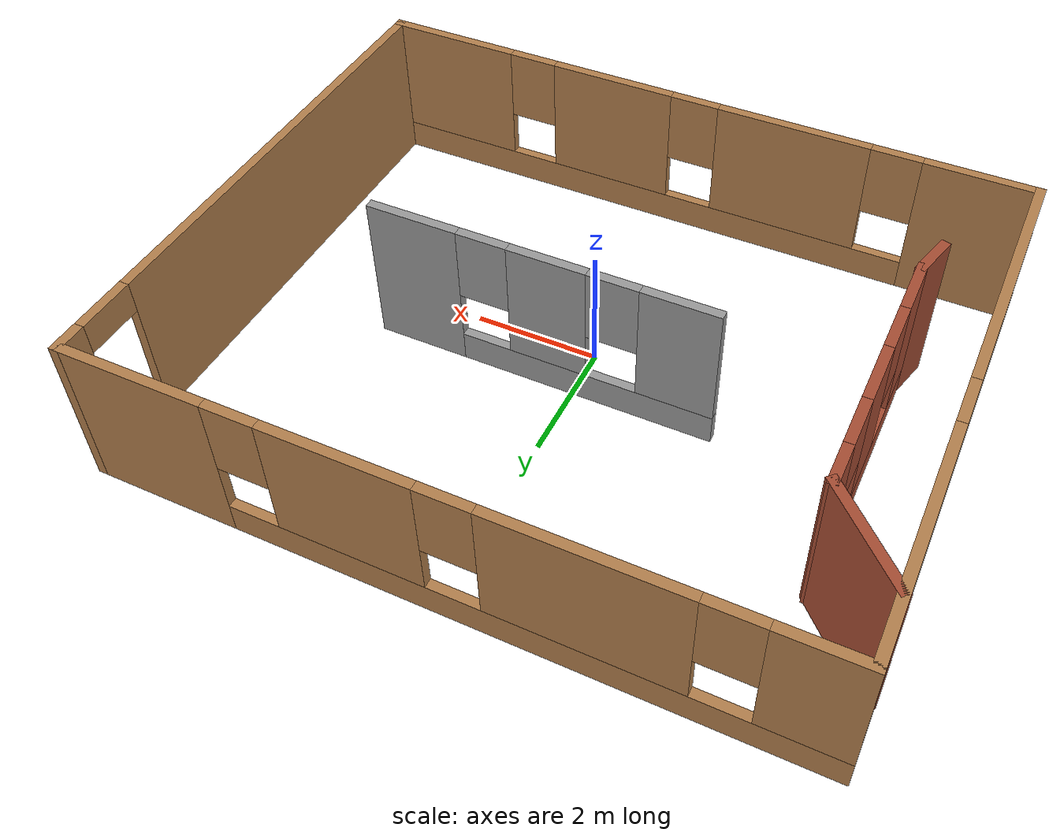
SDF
<?xml version='1.0'?>
<sdf version='1.7'>
  <model name='hotel'>
    <pose>-0.064485 0.655701 0 0 -0 0</pose>
    <link name='Wall_0'>
      <pose>0.006895 -4.3 0 0 -0 0</pose>
      <visual name='Wall_0_Visual_0'>
        <pose>-4.5979 0 1.25 0 -0 0</pose>
        <geometry>
          <box>
            <size>1.8042 0.15 2.5</size>
          </box>
        </geometry>
        <material>
          <script>
            <uri>file://media/materials/scripts/gazebo.material</uri>
            <name>Gazebo/Wood</name>
          </script>
          <ambient>1 1 1 1</ambient>
        </material>
        <meta>
          <layer>0</layer>
        </meta>
      </visual>
      <collision name='Wall_0_Collision_0'>
        <geometry>
          <box>
            <size>1.8042 0.15 2.5</size>
          </box>
        </geometry>
        <pose>-4.5979 0 1.25 0 -0 0</pose>
      </collision>
      <visual name='Wall_0_Visual_1'>
        <pose>0.9021 0 0.25 0 -0 0</pose>
        <geometry>
          <box>
            <size>9.1958 0.15 0.5</size>
          </box>
        </geometry>
        <material>
          <script>
            <uri>file://media/materials/scripts/gazebo.material</uri>
            <name>Gazebo/Wood</name>
          </script>
          <ambient>1 1 1 1</ambient>
        </material>
        <meta>
          <layer>0</layer>
        </meta>
      </visual>
      <collision name='Wall_0_Collision_1'>
        <geometry>
          <box>
            <size>9.1958 0.15 0.5</size>
          </box>
        </geometry>
        <pose>0.9021 0 0.25 0 -0 0</pose>
      </collision>
      <visual name='Wall_0_Visual_2'>
        <pose>-1.65654 0 1.5 0 -0 0</pose>
        <geometry>
          <box>
            <size>2.47851 0.15 2</size>
          </box>
        </geometry>
        <material>
          <script>
            <uri>file://media/materials/scripts/gazebo.material</uri>
            <name>Gazebo/Wood</name>
          </script>
          <ambient>1 1 1 1</ambient>
        </material>
        <meta>
          <layer>0</layer>
        </meta>
      </visual>
      <collision name='Wall_0_Collision_2'>
        <geometry>
          <box>
            <size>2.47851 0.15 2</size>
          </box>
        </geometry>
        <pose>-1.65654 0 1.5 0 -0 0</pose>
      </collision>
      <visual name='Wall_0_Visual_3'>
        <pose>1.42083 0 1.5 0 -0 0</pose>
        <geometry>
          <box>
            <size>2.07624 0.15 2</size>
          </box>
        </geometry>
        <material>
          <script>
            <uri>file://media/materials/scripts/gazebo.material</uri>
            <name>Gazebo/Wood</name>
          </script>
          <ambient>1 1 1 1</ambient>
        </material>
        <meta>
          <layer>0</layer>
        </meta>
      </visual>
      <collision name='Wall_0_Collision_3'>
        <geometry>
          <box>
            <size>2.07624 0.15 2</size>
          </box>
        </geometry>
        <pose>1.42083 0 1.5 0 -0 0</pose>
      </collision>
      <visual name='Wall_0_Visual_4'>
        <pose>4.37948 0 1.5 0 -0 0</pose>
        <geometry>
          <box>
            <size>2.24105 0.15 2</size>
          </box>
        </geometry>
        <material>
          <script>
            <uri>file://media/materials/scripts/gazebo.material</uri>
            <name>Gazebo/Wood</name>
          </script>
          <ambient>1 1 1 1</ambient>
        </material>
        <meta>
          <layer>0</layer>
        </meta>
      </visual>
      <collision name='Wall_0_Collision_4'>
        <geometry>
          <box>
            <size>2.24105 0.15 2</size>
          </box>
        </geometry>
        <pose>4.37948 0 1.5 0 -0 0</pose>
      </collision>
      <visual name='Wall_0_Visual_5'>
        <pose>-3.2958 0 1.9 0 -0 0</pose>
        <geometry>
          <box>
            <size>0.8 0.15 1.2</size>
          </box>
        </geometry>
        <material>
          <script>
            <uri>file://media/materials/scripts/gazebo.material</uri>
            <name>Gazebo/Wood</name>
          </script>
          <ambient>1 1 1 1</ambient>
        </material>
        <meta>
          <layer>0</layer>
        </meta>
      </visual>
      <collision name='Wall_0_Collision_5'>
        <geometry>
          <box>
            <size>0.8 0.15 1.2</size>
          </box>
        </geometry>
        <pose>-3.2958 0 1.9 0 -0 0</pose>
      </collision>
      <visual name='Wall_0_Visual_6'>
        <pose>-0.017288 0 1.9 0 -0 0</pose>
        <geometry>
          <box>
            <size>0.8 0.15 1.2</size>
          </box>
        </geometry>
        <material>
          <script>
            <uri>file://media/materials/scripts/gazebo.material</uri>
            <name>Gazebo/Wood</name>
          </script>
          <ambient>1 1 1 1</ambient>
        </material>
        <meta>
          <layer>0</layer>
        </meta>
      </visual>
      <collision name='Wall_0_Collision_6'>
        <geometry>
          <box>
            <size>0.8 0.15 1.2</size>
          </box>
        </geometry>
        <pose>-0.017288 0 1.9 0 -0 0</pose>
      </collision>
      <visual name='Wall_0_Visual_7'>
        <pose>2.85895 0 1.9 0 -0 0</pose>
        <geometry>
          <box>
            <size>0.8 0.15 1.2</size>
          </box>
        </geometry>
        <material>
          <script>
            <uri>file://media/materials/scripts/gazebo.material</uri>
            <name>Gazebo/Wood</name>
          </script>
          <ambient>1 1 1 1</ambient>
        </material>
        <meta>
          <layer>0</layer>
        </meta>
      </visual>
      <collision name='Wall_0_Collision_7'>
        <geometry>
          <box>
            <size>0.8 0.15 1.2</size>
          </box>
        </geometry>
        <pose>2.85895 0 1.9 0 -0 0</pose>
      </collision>
    </link>
    <link name='Wall_1'>
      <pose>5.43189 0 0 0 -0 1.5708</pose>
      <visual name='Wall_1_Visual_0'>
        <pose>-0.700694 0 1.25 0 -0 0</pose>
        <geometry>
          <box>
            <size>7.34861 0.15 2.5</size>
          </box>
        </geometry>
        <material>
          <script>
            <uri>file://media/materials/scripts/gazebo.material</uri>
            <name>Gazebo/Wood</name>
          </script>
          <ambient>1 1 1 1</ambient>
        </material>
        <meta>
          <layer>0</layer>
        </meta>
      </visual>
      <collision name='Wall_1_Collision_0'>
        <geometry>
          <box>
            <size>7.34861 0.15 2.5</size>
          </box>
        </geometry>
        <pose>-0.700694 0 1.25 0 -0 0</pose>
      </collision>
      <visual name='Wall_1_Visual_1'>
        <pose>4.12431 0 1.25 0 -0 0</pose>
        <geometry>
          <box>
            <size>0.501388 0.15 2.5</size>
          </box>
        </geometry>
        <material>
          <script>
            <uri>file://media/materials/scripts/gazebo.material</uri>
            <name>Gazebo/Wood</name>
          </script>
          <ambient>1 1 1 1</ambient>
        </material>
        <meta>
          <layer>0</layer>
        </meta>
      </visual>
      <collision name='Wall_1_Collision_1'>
        <geometry>
          <box>
            <size>0.501388 0.15 2.5</size>
          </box>
        </geometry>
        <pose>4.12431 0 1.25 0 -0 0</pose>
      </collision>
      <visual name='Wall_1_Visual_2'>
        <pose>3.42361 0 2.25 0 -0 0</pose>
        <geometry>
          <box>
            <size>0.9 0.15 0.5</size>
          </box>
        </geometry>
        <material>
          <script>
            <uri>file://media/materials/scripts/gazebo.material</uri>
            <name>Gazebo/Wood</name>
          </script>
          <ambient>1 1 1 1</ambient>
        </material>
        <meta>
          <layer>0</layer>
        </meta>
      </visual>
      <collision name='Wall_1_Collision_2'>
        <geometry>
          <box>
            <size>0.9 0.15 0.5</size>
          </box>
        </geometry>
        <pose>3.42361 0 2.25 0 -0 0</pose>
      </collision>
    </link>
    <link name='Wall_2'>
      <pose>0.006895 4.3 0 0 -0 3.14159</pose>
      <visual name='Wall_2_Visual_0'>
        <pose>-4.31914 0 1.25 0 -0 0</pose>
        <geometry>
          <box>
            <size>2.36173 0.15 2.5</size>
          </box>
        </geometry>
        <material>
          <script>
            <uri>file://media/materials/scripts/gazebo.material</uri>
            <name>Gazebo/Wood</name>
          </script>
          <ambient>1 1 1 1</ambient>
        </material>
        <meta>
          <layer>0</layer>
        </meta>
      </visual>
      <collision name='Wall_2_Collision_0'>
        <geometry>
          <box>
            <size>2.36173 0.15 2.5</size>
          </box>
        </geometry>
        <pose>-4.31914 0 1.25 0 -0 0</pose>
      </collision>
      <visual name='Wall_2_Visual_1'>
        <pose>1.18087 0 0.25 0 -0 0</pose>
        <geometry>
          <box>
            <size>8.63827 0.15 0.5</size>
          </box>
        </geometry>
        <material>
          <script>
            <uri>file://media/materials/scripts/gazebo.material</uri>
            <name>Gazebo/Wood</name>
          </script>
          <ambient>1 1 1 1</ambient>
        </material>
        <meta>
          <layer>0</layer>
        </meta>
      </visual>
      <collision name='Wall_2_Collision_1'>
        <geometry>
          <box>
            <size>8.63827 0.15 0.5</size>
          </box>
        </geometry>
        <pose>1.18087 0 0.25 0 -0 0</pose>
      </collision>
      <visual name='Wall_2_Visual_2'>
        <pose>-1.22975 0 1.5 0 -0 0</pose>
        <geometry>
          <box>
            <size>2.21704 0.15 2</size>
          </box>
        </geometry>
        <material>
          <script>
            <uri>file://media/materials/scripts/gazebo.material</uri>
            <name>Gazebo/Wood</name>
          </script>
          <ambient>1 1 1 1</ambient>
        </material>
        <meta>
          <layer>0</layer>
        </meta>
      </visual>
      <collision name='Wall_2_Collision_2'>
        <geometry>
          <box>
            <size>2.21704 0.15 2</size>
          </box>
        </geometry>
        <pose>-1.22975 0 1.5 0 -0 0</pose>
      </collision>
      <visual name='Wall_2_Visual_3'>
        <pose>2.06887 0 1.5 0 -0 0</pose>
        <geometry>
          <box>
            <size>2.78022 0.15 2</size>
          </box>
        </geometry>
        <material>
          <script>
            <uri>file://media/materials/scripts/gazebo.material</uri>
            <name>Gazebo/Wood</name>
          </script>
          <ambient>1 1 1 1</ambient>
        </material>
        <meta>
          <layer>0</layer>
        </meta>
      </visual>
      <collision name='Wall_2_Collision_3'>
        <geometry>
          <box>
            <size>2.78022 0.15 2</size>
          </box>
        </geometry>
        <pose>2.06887 0 1.5 0 -0 0</pose>
      </collision>
      <visual name='Wall_2_Visual_4'>
        <pose>4.87949 0 1.5 0 -0 0</pose>
        <geometry>
          <box>
            <size>1.24102 0.15 2</size>
          </box>
        </geometry>
        <material>
          <script>
            <uri>file://media/materials/scripts/gazebo.material</uri>
            <name>Gazebo/Wood</name>
          </script>
          <ambient>1 1 1 1</ambient>
        </material>
        <meta>
          <layer>0</layer>
        </meta>
      </visual>
      <collision name='Wall_2_Collision_4'>
        <geometry>
          <box>
            <size>1.24102 0.15 2</size>
          </box>
        </geometry>
        <pose>4.87949 0 1.5 0 -0 0</pose>
      </collision>
      <visual name='Wall_2_Visual_5'>
        <pose>-2.73827 0 1.9 0 -0 0</pose>
        <geometry>
          <box>
            <size>0.8 0.15 1.2</size>
          </box>
        </geometry>
        <material>
          <script>
            <uri>file://media/materials/scripts/gazebo.material</uri>
            <name>Gazebo/Wood</name>
          </script>
          <ambient>1 1 1 1</ambient>
        </material>
        <meta>
          <layer>0</layer>
        </meta>
      </visual>
      <collision name='Wall_2_Collision_5'>
        <geometry>
          <box>
            <size>0.8 0.15 1.2</size>
          </box>
        </geometry>
        <pose>-2.73827 0 1.9 0 -0 0</pose>
      </collision>
      <visual name='Wall_2_Visual_6'>
        <pose>0.278765 0 1.9 0 -0 0</pose>
        <geometry>
          <box>
            <size>0.8 0.15 1.2</size>
          </box>
        </geometry>
        <material>
          <script>
            <uri>file://media/materials/scripts/gazebo.material</uri>
            <name>Gazebo/Wood</name>
          </script>
          <ambient>1 1 1 1</ambient>
        </material>
        <meta>
          <layer>0</layer>
        </meta>
      </visual>
      <collision name='Wall_2_Collision_6'>
        <geometry>
          <box>
            <size>0.8 0.15 1.2</size>
          </box>
        </geometry>
        <pose>0.278765 0 1.9 0 -0 0</pose>
      </collision>
      <visual name='Wall_2_Visual_7'>
        <pose>3.85898 0 1.9 0 -0 0</pose>
        <geometry>
          <box>
            <size>0.8 0.15 1.2</size>
          </box>
        </geometry>
        <material>
          <script>
            <uri>file://media/materials/scripts/gazebo.material</uri>
            <name>Gazebo/Wood</name>
          </script>
          <ambient>1 1 1 1</ambient>
        </material>
        <meta>
          <layer>0</layer>
        </meta>
      </visual>
      <collision name='Wall_2_Collision_7'>
        <geometry>
          <box>
            <size>0.8 0.15 1.2</size>
          </box>
        </geometry>
        <pose>3.85898 0 1.9 0 -0 0</pose>
      </collision>
    </link>
    <link name='Wall_3'>
      <pose>-5.4181 0 0 0 -0 -1.5708</pose>
      <visual name='Wall_3_Visual_0'>
        <pose>-2.50028 0 1.25 0 -0 0</pose>
        <geometry>
          <box>
            <size>3.74945 0.15 2.5</size>
          </box>
        </geometry>
        <material>
          <script>
            <uri>file://media/materials/scripts/gazebo.material</uri>
            <name>Gazebo/Wood</name>
          </script>
          <ambient>1 1 1 1</ambient>
        </material>
        <meta>
          <layer>0</layer>
        </meta>
      </visual>
      <collision name='Wall_3_Collision_0'>
        <geometry>
          <box>
            <size>3.74945 0.15 2.5</size>
          </box>
        </geometry>
        <pose>-2.50028 0 1.25 0 -0 0</pose>
      </collision>
      <visual name='Wall_3_Visual_1'>
        <pose>1.87472 0 0.25 0 -0 0</pose>
        <geometry>
          <box>
            <size>5.00055 0.15 0.5</size>
          </box>
        </geometry>
        <material>
          <script>
            <uri>file://media/materials/scripts/gazebo.material</uri>
            <name>Gazebo/Wood</name>
          </script>
          <ambient>1 1 1 1</ambient>
        </material>
        <meta>
          <layer>0</layer>
        </meta>
      </visual>
      <collision name='Wall_3_Collision_1'>
        <geometry>
          <box>
            <size>5.00055 0.15 0.5</size>
          </box>
        </geometry>
        <pose>1.87472 0 0.25 0 -0 0</pose>
      </collision>
      <visual name='Wall_3_Visual_2'>
        <pose>2.27472 0 1.5 0 -0 0</pose>
        <geometry>
          <box>
            <size>4.20055 0.15 2</size>
          </box>
        </geometry>
        <material>
          <script>
            <uri>file://media/materials/scripts/gazebo.material</uri>
            <name>Gazebo/Wood</name>
          </script>
          <ambient>1 1 1 1</ambient>
        </material>
        <meta>
          <layer>0</layer>
        </meta>
      </visual>
      <collision name='Wall_3_Collision_2'>
        <geometry>
          <box>
            <size>4.20055 0.15 2</size>
          </box>
        </geometry>
        <pose>2.27472 0 1.5 0 -0 0</pose>
      </collision>
      <visual name='Wall_3_Visual_3'>
        <pose>-0.225554 0 1.9 0 -0 0</pose>
        <geometry>
          <box>
            <size>0.8 0.15 1.2</size>
          </box>
        </geometry>
        <material>
          <script>
            <uri>file://media/materials/scripts/gazebo.material</uri>
            <name>Gazebo/Wood</name>
          </script>
          <ambient>1 1 1 1</ambient>
        </material>
        <meta>
          <layer>0</layer>
        </meta>
      </visual>
      <collision name='Wall_3_Collision_3'>
        <geometry>
          <box>
            <size>0.8 0.15 1.2</size>
          </box>
        </geometry>
        <pose>-0.225554 0 1.9 0 -0 0</pose>
      </collision>
    </link>
    <link name='Wall_5'>
      <collision name='Wall_5_Collision'>
        <geometry>
          <box>
            <size>1.75 0.15 2.5</size>
          </box>
        </geometry>
        <pose>0 0 1.25 0 -0 0</pose>
      </collision>
      <visual name='Wall_5_Visual'>
        <pose>0 0 1.25 0 -0 0</pose>
        <geometry>
          <box>
            <size>1.75 0.15 2.5</size>
          </box>
        </geometry>
        <material>
          <script>
            <uri>file://media/materials/scripts/gazebo.material</uri>
            <name>Gazebo/Bricks</name>
          </script>
          <ambient>1 1 1 1</ambient>
        </material>
        <meta>
          <layer>0</layer>
        </meta>
      </visual>
      <pose>-4.83514 2.71713 0 0 -0 -0.785398</pose>
    </link>
    <link name='Wall_6'>
      <pose>-4.26946 0.101446 0 0 -0 -1.5708</pose>
      <visual name='Wall_6_Visual_0'>
        <pose>-1.77711 0 1.25 0 -0 0</pose>
        <geometry>
          <box>
            <size>0.695781 0.15 2.5</size>
          </box>
        </geometry>
        <material>
          <script>
            <uri>file://media/materials/scripts/gazebo.material</uri>
            <name>Gazebo/Bricks</name>
          </script>
          <ambient>1 1 1 1</ambient>
        </material>
        <meta>
          <layer>0</layer>
        </meta>
      </visual>
      <collision name='Wall_6_Collision_0'>
        <geometry>
          <box>
            <size>0.695781 0.15 2.5</size>
          </box>
        </geometry>
        <pose>-1.77711 0 1.25 0 -0 0</pose>
      </collision>
      <visual name='Wall_6_Visual_1'>
        <pose>0.347891 0 0.25 0 -0 0</pose>
        <geometry>
          <box>
            <size>3.55422 0.15 0.5</size>
          </box>
        </geometry>
        <material>
          <script>
            <uri>file://media/materials/scripts/gazebo.material</uri>
            <name>Gazebo/Bricks</name>
          </script>
          <ambient>1 1 1 1</ambient>
        </material>
        <meta>
          <layer>0</layer>
        </meta>
      </visual>
      <collision name='Wall_6_Collision_1'>
        <geometry>
          <box>
            <size>3.55422 0.15 0.5</size>
          </box>
        </geometry>
        <pose>0.347891 0 0.25 0 -0 0</pose>
      </collision>
      <visual name='Wall_6_Visual_2'>
        <pose>-0.134165 0 1.5 0 -0 0</pose>
        <geometry>
          <box>
            <size>0.990108 0.15 2</size>
          </box>
        </geometry>
        <material>
          <script>
            <uri>file://media/materials/scripts/gazebo.material</uri>
            <name>Gazebo/Bricks</name>
          </script>
          <ambient>1 1 1 1</ambient>
        </material>
        <meta>
          <layer>0</layer>
        </meta>
      </visual>
      <collision name='Wall_6_Collision_2'>
        <geometry>
          <box>
            <size>0.990108 0.15 2</size>
          </box>
        </geometry>
        <pose>-0.134165 0 1.5 0 -0 0</pose>
      </collision>
      <visual name='Wall_6_Visual_3'>
        <pose>1.64295 0 1.5 0 -0 0</pose>
        <geometry>
          <box>
            <size>0.964111 0.15 2</size>
          </box>
        </geometry>
        <material>
          <script>
            <uri>file://media/materials/scripts/gazebo.material</uri>
            <name>Gazebo/Bricks</name>
          </script>
          <ambient>1 1 1 1</ambient>
        </material>
        <meta>
          <layer>0</layer>
        </meta>
      </visual>
      <collision name='Wall_6_Collision_3'>
        <geometry>
          <box>
            <size>0.964111 0.15 2</size>
          </box>
        </geometry>
        <pose>1.64295 0 1.5 0 -0 0</pose>
      </collision>
      <visual name='Wall_6_Visual_4'>
        <pose>-1.02922 0 1.9 0 -0 0</pose>
        <geometry>
          <box>
            <size>0.8 0.15 1.2</size>
          </box>
        </geometry>
        <material>
          <script>
            <uri>file://media/materials/scripts/gazebo.material</uri>
            <name>Gazebo/Bricks</name>
          </script>
          <ambient>1 1 1 1</ambient>
        </material>
        <meta>
          <layer>0</layer>
        </meta>
      </visual>
      <collision name='Wall_6_Collision_4'>
        <geometry>
          <box>
            <size>0.8 0.15 1.2</size>
          </box>
        </geometry>
        <pose>-1.02922 0 1.9 0 -0 0</pose>
      </collision>
      <visual name='Wall_6_Visual_5'>
        <pose>0.760889 0 1.9 0 -0 0</pose>
        <geometry>
          <box>
            <size>0.8 0.15 1.2</size>
          </box>
        </geometry>
        <material>
          <script>
            <uri>file://media/materials/scripts/gazebo.material</uri>
            <name>Gazebo/Bricks</name>
          </script>
          <ambient>1 1 1 1</ambient>
        </material>
        <meta>
          <layer>0</layer>
        </meta>
      </visual>
      <collision name='Wall_6_Collision_5'>
        <geometry>
          <box>
            <size>0.8 0.15 1.2</size>
          </box>
        </geometry>
        <pose>0.760889 0 1.9 0 -0 0</pose>
      </collision>
    </link>
    <link name='Wall_7'>
      <collision name='Wall_7_Collision'>
        <geometry>
          <box>
            <size>0.75 0.15 2.5</size>
          </box>
        </geometry>
        <pose>0 0 1.25 0 -0 0</pose>
      </collision>
      <visual name='Wall_7_Visual'>
        <pose>0 0 1.25 0 -0 0</pose>
        <geometry>
          <box>
            <size>0.75 0.15 2.5</size>
          </box>
        </geometry>
        <material>
          <script>
            <uri>file://media/materials/scripts/gazebo.material</uri>
            <name>Gazebo/Bricks</name>
          </script>
          <ambient>1 1 1 1</ambient>
        </material>
        <meta>
          <layer>0</layer>
        </meta>
      </visual>
      <pose>-4.3471 -2.23833 0 0 -0 -1.8326</pose>
    </link>
    <link name='Wall_9'>
      <pose>0.593119 0.104872 0 0 -0 3.14159</pose>
      <visual name='Wall_9_Visual_0'>
        <pose>-2.01745 0 1.25 0 -0 0</pose>
        <geometry>
          <box>
            <size>1.46511 0.15 2.5</size>
          </box>
        </geometry>
        <material>
          <script>
            <uri>file://media/materials/scripts/gazebo.material</uri>
            <name>Gazebo/Grey</name>
          </script>
          <ambient>1 1 1 1</ambient>
        </material>
        <meta>
          <layer>0</layer>
        </meta>
      </visual>
      <collision name='Wall_9_Collision_0'>
        <geometry>
          <box>
            <size>1.46511 0.15 2.5</size>
          </box>
        </geometry>
        <pose>-2.01745 0 1.25 0 -0 0</pose>
      </collision>
      <visual name='Wall_9_Visual_1'>
        <pose>0.732554 0 0.25 0 -0 0</pose>
        <geometry>
          <box>
            <size>4.03489 0.15 0.5</size>
          </box>
        </geometry>
        <material>
          <script>
            <uri>file://media/materials/scripts/gazebo.material</uri>
            <name>Gazebo/Grey</name>
          </script>
          <ambient>1 1 1 1</ambient>
        </material>
        <meta>
          <layer>0</layer>
        </meta>
      </visual>
      <collision name='Wall_9_Collision_1'>
        <geometry>
          <box>
            <size>4.03489 0.15 0.5</size>
          </box>
        </geometry>
        <pose>0.732554 0 0.25 0 -0 0</pose>
      </collision>
      <visual name='Wall_9_Visual_2'>
        <pose>0.130843 0 1.5 0 -0 0</pose>
        <geometry>
          <box>
            <size>1.23147 0.15 2</size>
          </box>
        </geometry>
        <material>
          <script>
            <uri>file://media/materials/scripts/gazebo.material</uri>
            <name>Gazebo/Grey</name>
          </script>
          <ambient>1 1 1 1</ambient>
        </material>
        <meta>
          <layer>0</layer>
        </meta>
      </visual>
      <collision name='Wall_9_Collision_2'>
        <geometry>
          <box>
            <size>1.23147 0.15 2</size>
          </box>
        </geometry>
        <pose>0.130843 0 1.5 0 -0 0</pose>
      </collision>
      <visual name='Wall_9_Visual_3'>
        <pose>2.14829 0 1.5 0 -0 0</pose>
        <geometry>
          <box>
            <size>1.20342 0.15 2</size>
          </box>
        </geometry>
        <material>
          <script>
            <uri>file://media/materials/scripts/gazebo.material</uri>
            <name>Gazebo/Grey</name>
          </script>
          <ambient>1 1 1 1</ambient>
        </material>
        <meta>
          <layer>0</layer>
        </meta>
      </visual>
      <collision name='Wall_9_Collision_3'>
        <geometry>
          <box>
            <size>1.20342 0.15 2</size>
          </box>
        </geometry>
        <pose>2.14829 0 1.5 0 -0 0</pose>
      </collision>
      <visual name='Wall_9_Visual_4'>
        <pose>-0.884892 0 1.9 0 -0 0</pose>
        <geometry>
          <box>
            <size>0.8 0.15 1.2</size>
          </box>
        </geometry>
        <material>
          <script>
            <uri>file://media/materials/scripts/gazebo.material</uri>
            <name>Gazebo/Grey</name>
          </script>
          <ambient>1 1 1 1</ambient>
        </material>
        <meta>
          <layer>0</layer>
        </meta>
      </visual>
      <collision name='Wall_9_Collision_4'>
        <geometry>
          <box>
            <size>0.8 0.15 1.2</size>
          </box>
        </geometry>
        <pose>-0.884892 0 1.9 0 -0 0</pose>
      </collision>
      <visual name='Wall_9_Visual_5'>
        <pose>1.14658 0 1.9 0 -0 0</pose>
        <geometry>
          <box>
            <size>0.8 0.15 1.2</size>
          </box>
        </geometry>
        <material>
          <script>
            <uri>file://media/materials/scripts/gazebo.material</uri>
            <name>Gazebo/Grey</name>
          </script>
          <ambient>1 1 1 1</ambient>
        </material>
        <meta>
          <layer>0</layer>
        </meta>
      </visual>
      <collision name='Wall_9_Collision_5'>
        <geometry>
          <box>
            <size>0.8 0.15 1.2</size>
          </box>
        </geometry>
        <pose>1.14658 0 1.9 0 -0 0</pose>
      </collision>
    </link>
    <static>1</static>
  </model>
</sdf>
